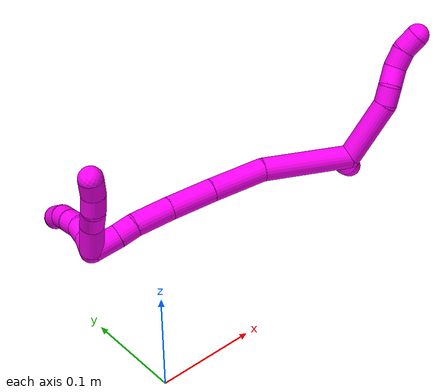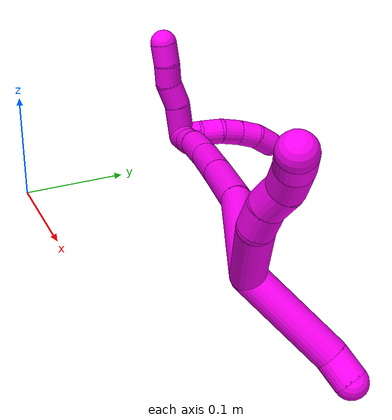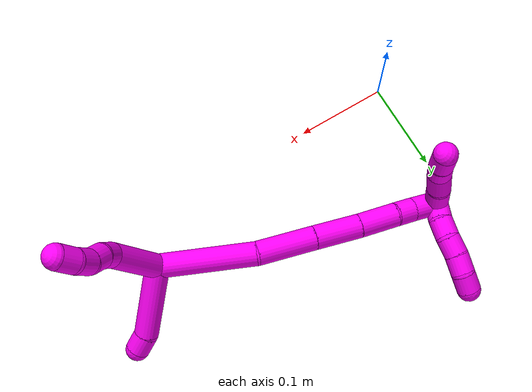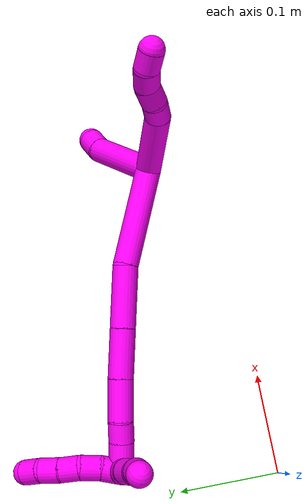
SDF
<sdf version="1.7">
 <world name="default">
  <model name="10">
   <static>0</static>
   <link name="10">
    <collision name="collision-cylinder-e_1_2_8">
     <pose>-0.000286 0.002305 0.034455 -0.066793 -0.008289 0.000277</pose>
     <geometry><cylinder><radius>0.0125</radius><length>0.069066</length></cylinder></geometry>
     <surface>
      <friction><ode><mu>1.16</mu><mu2>1.16</mu2><slip1>0</slip1><slip2>0</slip2></ode></friction>
      <contact><ode><kp>1e+06</kp><kd>1</kd><max_vel>0</max_vel><min_depth>0.001</min_depth></ode></contact>
     </surface>
    </collision>
    <visual name="visual-cylinder-e_1_2_8">
     <pose>-0.000286 0.002305 0.034455 -0.066793 -0.008289 0.000277</pose>
     <geometry><cylinder><radius>0.0125</radius><length>0.069066</length></cylinder></geometry>
     <material><ambient>1 0 0.964706 1</ambient></material>
    </visual>
    <collision name="collision-cylinder-e_2_8_9">
     <pose>-0.001416 0.008479 0.078166 -0.395961 -0.08389 0.016839</pose>
     <geometry><cylinder><radius>0.0125</radius><length>0.020135</length></cylinder></geometry>
     <surface>
      <friction><ode><mu>1.16</mu><mu2>1.16</mu2><slip1>0</slip1><slip2>0</slip2></ode></friction>
      <contact><ode><kp>1e+06</kp><kd>1</kd><max_vel>0</max_vel><min_depth>0.001</min_depth></ode></contact>
     </surface>
    </collision>
    <visual name="visual-cylinder-e_2_8_9">
     <pose>-0.001416 0.008479 0.078166 -0.395961 -0.08389 0.016839</pose>
     <geometry><cylinder><radius>0.0125</radius><length>0.020135</length></cylinder></geometry>
     <material><ambient>1 0 0.964706 1</ambient></material>
    </visual>
    <collision name="collision-cylinder-e_3_9_10">
     <pose>-0.000738 0.017298 0.096071 -0.519743 0.151557 -0.040368</pose>
     <geometry><cylinder><radius>0.0125</radius><length>0.020162</length></cylinder></geometry>
     <surface>
      <friction><ode><mu>1.16</mu><mu2>1.16</mu2><slip1>0</slip1><slip2>0</slip2></ode></friction>
      <contact><ode><kp>1e+06</kp><kd>1</kd><max_vel>0</max_vel><min_depth>0.001</min_depth></ode></contact>
     </surface>
    </collision>
    <visual name="visual-cylinder-e_3_9_10">
     <pose>-0.000738 0.017298 0.096071 -0.519743 0.151557 -0.040368</pose>
     <geometry><cylinder><radius>0.0125</radius><length>0.020162</length></cylinder></geometry>
     <material><ambient>1 0 0.964706 1</ambient></material>
    </visual>
    <collision name="collision-cylinder-e_4_10_11">
     <pose>0.000705 0.024477 0.11472 -0.219396 -0.007721 0.00085</pose>
     <geometry><cylinder><radius>0.0125</radius><length>0.02049</length></cylinder></geometry>
     <surface>
      <friction><ode><mu>1.16</mu><mu2>1.16</mu2><slip1>0</slip1><slip2>0</slip2></ode></friction>
      <contact><ode><kp>1e+06</kp><kd>1</kd><max_vel>0</max_vel><min_depth>0.001</min_depth></ode></contact>
     </surface>
    </collision>
    <visual name="visual-cylinder-e_4_10_11">
     <pose>0.000705 0.024477 0.11472 -0.219396 -0.007721 0.00085</pose>
     <geometry><cylinder><radius>0.0125</radius><length>0.02049</length></cylinder></geometry>
     <material><ambient>1 0 0.964706 1</ambient></material>
    </visual>
    <collision name="collision-cylinder-e_5_11_6">
     <pose>0.001651 0.026014 0.134716 0.069164 0.101879 0.003528</pose>
     <geometry><cylinder><radius>0.0125</radius><length>0.020147</length></cylinder></geometry>
     <surface>
      <friction><ode><mu>1.16</mu><mu2>1.16</mu2><slip1>0</slip1><slip2>0</slip2></ode></friction>
      <contact><ode><kp>1e+06</kp><kd>1</kd><max_vel>0</max_vel><min_depth>0.001</min_depth></ode></contact>
     </surface>
    </collision>
    <visual name="visual-cylinder-e_5_11_6">
     <pose>0.001651 0.026014 0.134716 0.069164 0.101879 0.003528</pose>
     <geometry><cylinder><radius>0.0125</radius><length>0.020147</length></cylinder></geometry>
     <material><ambient>1 0 0.964706 1</ambient></material>
    </visual>
    <collision name="collision-cylinder-e_1_2_12">
     <pose>0.033444 0.012926 -0.016158 -2.46687 1.01675 -2.01794</pose>
     <geometry><cylinder><radius>0.0125</radius><length>0.078655</length></cylinder></geometry>
     <surface>
      <friction><ode><mu>1.16</mu><mu2>1.16</mu2><slip1>0</slip1><slip2>0</slip2></ode></friction>
      <contact><ode><kp>1e+06</kp><kd>1</kd><max_vel>0</max_vel><min_depth>0.001</min_depth></ode></contact>
     </surface>
    </collision>
    <visual name="visual-cylinder-e_1_2_12">
     <pose>0.033444 0.012926 -0.016158 -2.46687 1.01675 -2.01794</pose>
     <geometry><cylinder><radius>0.0125</radius><length>0.078655</length></cylinder></geometry>
     <material><ambient>1 0 0.964706 1</ambient></material>
    </visual>
    <collision name="collision-cylinder-e_2_12_5">
     <pose>0.077203 0.027097 -0.034755 -2.66941 1.31119 -2.53525</pose>
     <geometry><cylinder><radius>0.0125</radius><length>0.021345</length></cylinder></geometry>
     <surface>
      <friction><ode><mu>1.16</mu><mu2>1.16</mu2><slip1>0</slip1><slip2>0</slip2></ode></friction>
      <contact><ode><kp>1e+06</kp><kd>1</kd><max_vel>0</max_vel><min_depth>0.001</min_depth></ode></contact>
     </surface>
    </collision>
    <visual name="visual-cylinder-e_2_12_5">
     <pose>0.077203 0.027097 -0.034755 -2.66941 1.31119 -2.53525</pose>
     <geometry><cylinder><radius>0.0125</radius><length>0.021345</length></cylinder></geometry>
     <material><ambient>1 0 0.964706 1</ambient></material>
    </visual>
    <collision name="collision-cylinder-e_1_2_13">
     <pose>-0.037982 0.018758 -0.026556 -2.52661 -0.862822 1.93382</pose>
     <geometry><cylinder><radius>0.0125</radius><length>0.099994</length></cylinder></geometry>
     <surface>
      <friction><ode><mu>1.16</mu><mu2>1.16</mu2><slip1>0</slip1><slip2>0</slip2></ode></friction>
      <contact><ode><kp>1e+06</kp><kd>1</kd><max_vel>0</max_vel><min_depth>0.001</min_depth></ode></contact>
     </surface>
    </collision>
    <visual name="visual-cylinder-e_1_2_13">
     <pose>-0.037982 0.018758 -0.026556 -2.52661 -0.862822 1.93382</pose>
     <geometry><cylinder><radius>0.0125</radius><length>0.099994</length></cylinder></geometry>
     <material><ambient>1 0 0.964706 1</ambient></material>
    </visual>
    <collision name="collision-cylinder-e_2_13_14">
     <pose>-0.099145 0.042517 -0.071996 -2.8827 -0.870553 2.5957</pose>
     <geometry><cylinder><radius>0.0125</radius><length>0.060631</length></cylinder></geometry>
     <surface>
      <friction><ode><mu>1.16</mu><mu2>1.16</mu2><slip1>0</slip1><slip2>0</slip2></ode></friction>
      <contact><ode><kp>1e+06</kp><kd>1</kd><max_vel>0</max_vel><min_depth>0.001</min_depth></ode></contact>
     </surface>
    </collision>
    <visual name="visual-cylinder-e_2_13_14">
     <pose>-0.099145 0.042517 -0.071996 -2.8827 -0.870553 2.5957</pose>
     <geometry><cylinder><radius>0.0125</radius><length>0.060631</length></cylinder></geometry>
     <material><ambient>1 0 0.964706 1</ambient></material>
    </visual>
    <collision name="collision-cylinder-e_3_14_15">
     <pose>-0.140508 0.051298 -0.106534 -2.90467 -0.845924 2.62461</pose>
     <geometry><cylinder><radius>0.0125</radius><length>0.048573</length></cylinder></geometry>
     <surface>
      <friction><ode><mu>1.16</mu><mu2>1.16</mu2><slip1>0</slip1><slip2>0</slip2></ode></friction>
      <contact><ode><kp>1e+06</kp><kd>1</kd><max_vel>0</max_vel><min_depth>0.001</min_depth></ode></contact>
     </surface>
    </collision>
    <visual name="visual-cylinder-e_3_14_15">
     <pose>-0.140508 0.051298 -0.106534 -2.90467 -0.845924 2.62461</pose>
     <geometry><cylinder><radius>0.0125</radius><length>0.048573</length></cylinder></geometry>
     <material><ambient>1 0 0.964706 1</ambient></material>
    </visual>
    <collision name="collision-cylinder-e_4_15_16">
     <pose>-0.174293 0.057416 -0.135443 -2.96698 -0.859044 2.76397</pose>
     <geometry><cylinder><radius>0.0125</radius><length>0.041215</length></cylinder></geometry>
     <surface>
      <friction><ode><mu>1.16</mu><mu2>1.16</mu2><slip1>0</slip1><slip2>0</slip2></ode></friction>
      <contact><ode><kp>1e+06</kp><kd>1</kd><max_vel>0</max_vel><min_depth>0.001</min_depth></ode></contact>
     </surface>
    </collision>
    <visual name="visual-cylinder-e_4_15_16">
     <pose>-0.174293 0.057416 -0.135443 -2.96698 -0.859044 2.76397</pose>
     <geometry><cylinder><radius>0.0125</radius><length>0.041215</length></cylinder></geometry>
     <material><ambient>1 0 0.964706 1</ambient></material>
    </visual>
    <collision name="collision-cylinder-e_5_16_17">
     <pose>-0.196629 0.060036 -0.156202 -3.10405 -0.730841 3.04353</pose>
     <geometry><cylinder><radius>0.0125</radius><length>0.02017</length></cylinder></geometry>
     <surface>
      <friction><ode><mu>1.16</mu><mu2>1.16</mu2><slip1>0</slip1><slip2>0</slip2></ode></friction>
      <contact><ode><kp>1e+06</kp><kd>1</kd><max_vel>0</max_vel><min_depth>0.001</min_depth></ode></contact>
     </surface>
    </collision>
    <visual name="visual-cylinder-e_5_16_17">
     <pose>-0.196629 0.060036 -0.156202 -3.10405 -0.730841 3.04353</pose>
     <geometry><cylinder><radius>0.0125</radius><length>0.02017</length></cylinder></geometry>
     <material><ambient>1 0 0.964706 1</ambient></material>
    </visual>
    <collision name="collision-cylinder-e_6_17_1">
     <pose>-0.213553 0.061604 -0.174232 -3.02003 -0.765585 2.84159</pose>
     <geometry><cylinder><radius>0.0125</radius><length>0.029416</length></cylinder></geometry>
     <surface>
      <friction><ode><mu>1.16</mu><mu2>1.16</mu2><slip1>0</slip1><slip2>0</slip2></ode></friction>
      <contact><ode><kp>1e+06</kp><kd>1</kd><max_vel>0</max_vel><min_depth>0.001</min_depth></ode></contact>
     </surface>
    </collision>
    <visual name="visual-cylinder-e_6_17_1">
     <pose>-0.213553 0.061604 -0.174232 -3.02003 -0.765585 2.84159</pose>
     <geometry><cylinder><radius>0.0125</radius><length>0.029416</length></cylinder></geometry>
     <material><ambient>1 0 0.964706 1</ambient></material>
    </visual>
    <collision name="collision-cylinder-e_1_1_18">
     <pose>-0.232409 0.066045 -0.169485 -0.203736 -0.507067 0.052961</pose>
     <geometry><cylinder><radius>0.0125</radius><length>0.03568</length></cylinder></geometry>
     <surface>
      <friction><ode><mu>1.16</mu><mu2>1.16</mu2><slip1>0</slip1><slip2>0</slip2></ode></friction>
      <contact><ode><kp>1e+06</kp><kd>1</kd><max_vel>0</max_vel><min_depth>0.001</min_depth></ode></contact>
     </surface>
    </collision>
    <visual name="visual-cylinder-e_1_1_18">
     <pose>-0.232409 0.066045 -0.169485 -0.203736 -0.507067 0.052961</pose>
     <geometry><cylinder><radius>0.0125</radius><length>0.03568</length></cylinder></geometry>
     <material><ambient>1 0 0.964706 1</ambient></material>
    </visual>
    <collision name="collision-cylinder-e_2_18_19">
     <pose>-0.247771 0.068697 -0.144432 0.051493 -0.599914 -0.015929</pose>
     <geometry><cylinder><radius>0.0125</radius><length>0.023731</length></cylinder></geometry>
     <surface>
      <friction><ode><mu>1.16</mu><mu2>1.16</mu2><slip1>0</slip1><slip2>0</slip2></ode></friction>
      <contact><ode><kp>1e+06</kp><kd>1</kd><max_vel>0</max_vel><min_depth>0.001</min_depth></ode></contact>
     </surface>
    </collision>
    <visual name="visual-cylinder-e_2_18_19">
     <pose>-0.247771 0.068697 -0.144432 0.051493 -0.599914 -0.015929</pose>
     <geometry><cylinder><radius>0.0125</radius><length>0.023731</length></cylinder></geometry>
     <material><ambient>1 0 0.964706 1</ambient></material>
    </visual>
    <collision name="collision-cylinder-e_3_19_20">
     <pose>-0.259066 0.070493 -0.125893 -0.256851 -0.46971 0.061777</pose>
     <geometry><cylinder><radius>0.0125</radius><length>0.02031</length></cylinder></geometry>
     <surface>
      <friction><ode><mu>1.16</mu><mu2>1.16</mu2><slip1>0</slip1><slip2>0</slip2></ode></friction>
      <contact><ode><kp>1e+06</kp><kd>1</kd><max_vel>0</max_vel><min_depth>0.001</min_depth></ode></contact>
     </surface>
    </collision>
    <visual name="visual-cylinder-e_3_19_20">
     <pose>-0.259066 0.070493 -0.125893 -0.256851 -0.46971 0.061777</pose>
     <geometry><cylinder><radius>0.0125</radius><length>0.02031</length></cylinder></geometry>
     <material><ambient>1 0 0.964706 1</ambient></material>
    </visual>
    <collision name="collision-cylinder-e_4_20_4">
     <pose>-0.269679 0.074819 -0.109229 -0.250802 -0.635194 0.082832</pose>
     <geometry><cylinder><radius>0.0125</radius><length>0.020279</length></cylinder></geometry>
     <surface>
      <friction><ode><mu>1.16</mu><mu2>1.16</mu2><slip1>0</slip1><slip2>0</slip2></ode></friction>
      <contact><ode><kp>1e+06</kp><kd>1</kd><max_vel>0</max_vel><min_depth>0.001</min_depth></ode></contact>
     </surface>
    </collision>
    <visual name="visual-cylinder-e_4_20_4">
     <pose>-0.269679 0.074819 -0.109229 -0.250802 -0.635194 0.082832</pose>
     <geometry><cylinder><radius>0.0125</radius><length>0.020279</length></cylinder></geometry>
     <material><ambient>1 0 0.964706 1</ambient></material>
    </visual>
    <collision name="collision-cylinder-e_1_1_21">
     <pose>-0.220038 0.072173 -0.184492 -1.54215 0.379807 -0.369325</pose>
     <geometry><cylinder><radius>0.0125</radius><length>0.02</length></cylinder></geometry>
     <surface>
      <friction><ode><mu>1.16</mu><mu2>1.16</mu2><slip1>0</slip1><slip2>0</slip2></ode></friction>
      <contact><ode><kp>1e+06</kp><kd>1</kd><max_vel>0</max_vel><min_depth>0.001</min_depth></ode></contact>
     </surface>
    </collision>
    <visual name="visual-cylinder-e_1_1_21">
     <pose>-0.220038 0.072173 -0.184492 -1.54215 0.379807 -0.369325</pose>
     <geometry><cylinder><radius>0.0125</radius><length>0.02</length></cylinder></geometry>
     <material><ambient>1 0 0.964706 1</ambient></material>
    </visual>
    <collision name="collision-cylinder-e_2_21_22">
     <pose>-0.213265 0.090847 -0.185783 -1.73506 0.311579 -0.366327</pose>
     <geometry><cylinder><radius>0.0125</radius><length>0.02</length></cylinder></geometry>
     <surface>
      <friction><ode><mu>1.16</mu><mu2>1.16</mu2><slip1>0</slip1><slip2>0</slip2></ode></friction>
      <contact><ode><kp>1e+06</kp><kd>1</kd><max_vel>0</max_vel><min_depth>0.001</min_depth></ode></contact>
     </surface>
    </collision>
    <visual name="visual-cylinder-e_2_21_22">
     <pose>-0.213265 0.090847 -0.185783 -1.73506 0.311579 -0.366327</pose>
     <geometry><cylinder><radius>0.0125</radius><length>0.02</length></cylinder></geometry>
     <material><ambient>1 0 0.964706 1</ambient></material>
    </visual>
    <collision name="collision-cylinder-e_3_22_23">
     <pose>-0.207262 0.108804 -0.191582 -2.03069 0.298082 -0.474755</pose>
     <geometry><cylinder><radius>0.0125</radius><length>0.02</length></cylinder></geometry>
     <surface>
      <friction><ode><mu>1.16</mu><mu2>1.16</mu2><slip1>0</slip1><slip2>0</slip2></ode></friction>
      <contact><ode><kp>1e+06</kp><kd>1</kd><max_vel>0</max_vel><min_depth>0.001</min_depth></ode></contact>
     </surface>
    </collision>
    <visual name="visual-cylinder-e_3_22_23">
     <pose>-0.207262 0.108804 -0.191582 -2.03069 0.298082 -0.474755</pose>
     <geometry><cylinder><radius>0.0125</radius><length>0.02</length></cylinder></geometry>
     <material><ambient>1 0 0.964706 1</ambient></material>
    </visual>
    <collision name="collision-cylinder-e_4_23_24">
     <pose>-0.200222 0.12538 -0.200183 -2.06903 0.422795 -0.692974</pose>
     <geometry><cylinder><radius>0.0125</radius><length>0.02</length></cylinder></geometry>
     <surface>
      <friction><ode><mu>1.16</mu><mu2>1.16</mu2><slip1>0</slip1><slip2>0</slip2></ode></friction>
      <contact><ode><kp>1e+06</kp><kd>1</kd><max_vel>0</max_vel><min_depth>0.001</min_depth></ode></contact>
     </surface>
    </collision>
    <visual name="visual-cylinder-e_4_23_24">
     <pose>-0.200222 0.12538 -0.200183 -2.06903 0.422795 -0.692974</pose>
     <geometry><cylinder><radius>0.0125</radius><length>0.02</length></cylinder></geometry>
     <material><ambient>1 0 0.964706 1</ambient></material>
    </visual>
    <collision name="collision-cylinder-e_5_24_3">
     <pose>-0.191817 0.139466 -0.211219 -2.40344 0.444744 -1.05799</pose>
     <geometry><cylinder><radius>0.0125</radius><length>0.02</length></cylinder></geometry>
     <surface>
      <friction><ode><mu>1.16</mu><mu2>1.16</mu2><slip1>0</slip1><slip2>0</slip2></ode></friction>
      <contact><ode><kp>1e+06</kp><kd>1</kd><max_vel>0</max_vel><min_depth>0.001</min_depth></ode></contact>
     </surface>
    </collision>
    <visual name="visual-cylinder-e_5_24_3">
     <pose>-0.191817 0.139466 -0.211219 -2.40344 0.444744 -1.05799</pose>
     <geometry><cylinder><radius>0.0125</radius><length>0.02</length></cylinder></geometry>
     <material><ambient>1 0 0.964706 1</ambient></material>
    </visual>
    <collision name="collision-sphere-3">
     <pose>-0.187515 0.14554 -0.217896 0 -0 0</pose>
     <geometry><sphere><radius>0.0125</radius></sphere></geometry>
     <surface>
      <friction><ode><mu>1.16</mu><mu2>1.16</mu2><slip1>0</slip1><slip2>0</slip2></ode></friction>
      <contact><ode><kp>1e+06</kp><kd>1</kd><max_vel>0</max_vel><min_depth>0.001</min_depth></ode></contact>
     </surface>
    </collision>
    <visual name="visual-sphere-3">
     <pose>-0.187515 0.14554 -0.217896 0 -0 0</pose>
     <geometry><sphere><radius>0.0125</radius></sphere></geometry>
     <material><ambient>1 0 0.964706 1</ambient></material>
    </visual>
    <collision name="collision-sphere-24">
     <pose>-0.196119 0.133391 -0.204541 0 -0 0</pose>
     <geometry><sphere><radius>0.0125</radius></sphere></geometry>
     <surface>
      <friction><ode><mu>1.16</mu><mu2>1.16</mu2><slip1>0</slip1><slip2>0</slip2></ode></friction>
      <contact><ode><kp>1e+06</kp><kd>1</kd><max_vel>0</max_vel><min_depth>0.001</min_depth></ode></contact>
     </surface>
    </collision>
    <visual name="visual-sphere-24">
     <pose>-0.196119 0.133391 -0.204541 0 -0 0</pose>
     <geometry><sphere><radius>0.0125</radius></sphere></geometry>
     <material><ambient>1 0 0.964706 1</ambient></material>
    </visual>
    <collision name="collision-sphere-23">
     <pose>-0.204325 0.117369 -0.195825 0 -0 0</pose>
     <geometry><sphere><radius>0.0125</radius></sphere></geometry>
     <surface>
      <friction><ode><mu>1.16</mu><mu2>1.16</mu2><slip1>0</slip1><slip2>0</slip2></ode></friction>
      <contact><ode><kp>1e+06</kp><kd>1</kd><max_vel>0</max_vel><min_depth>0.001</min_depth></ode></contact>
     </surface>
    </collision>
    <visual name="visual-sphere-23">
     <pose>-0.204325 0.117369 -0.195825 0 -0 0</pose>
     <geometry><sphere><radius>0.0125</radius></sphere></geometry>
     <material><ambient>1 0 0.964706 1</ambient></material>
    </visual>
    <collision name="collision-sphere-22">
     <pose>-0.210199 0.100238 -0.187339 0 -0 0</pose>
     <geometry><sphere><radius>0.0125</radius></sphere></geometry>
     <surface>
      <friction><ode><mu>1.16</mu><mu2>1.16</mu2><slip1>0</slip1><slip2>0</slip2></ode></friction>
      <contact><ode><kp>1e+06</kp><kd>1</kd><max_vel>0</max_vel><min_depth>0.001</min_depth></ode></contact>
     </surface>
    </collision>
    <visual name="visual-sphere-22">
     <pose>-0.210199 0.100238 -0.187339 0 -0 0</pose>
     <geometry><sphere><radius>0.0125</radius></sphere></geometry>
     <material><ambient>1 0 0.964706 1</ambient></material>
    </visual>
    <collision name="collision-sphere-21">
     <pose>-0.21633 0.081457 -0.184226 0 -0 0</pose>
     <geometry><sphere><radius>0.0125</radius></sphere></geometry>
     <surface>
      <friction><ode><mu>1.16</mu><mu2>1.16</mu2><slip1>0</slip1><slip2>0</slip2></ode></friction>
      <contact><ode><kp>1e+06</kp><kd>1</kd><max_vel>0</max_vel><min_depth>0.001</min_depth></ode></contact>
     </surface>
    </collision>
    <visual name="visual-sphere-21">
     <pose>-0.21633 0.081457 -0.184226 0 -0 0</pose>
     <geometry><sphere><radius>0.0125</radius></sphere></geometry>
     <material><ambient>1 0 0.964706 1</ambient></material>
    </visual>
    <collision name="collision-sphere-4">
     <pose>-0.275695 0.076844 -0.101322 0 -0 0</pose>
     <geometry><sphere><radius>0.0125</radius></sphere></geometry>
     <surface>
      <friction><ode><mu>1.16</mu><mu2>1.16</mu2><slip1>0</slip1><slip2>0</slip2></ode></friction>
      <contact><ode><kp>1e+06</kp><kd>1</kd><max_vel>0</max_vel><min_depth>0.001</min_depth></ode></contact>
     </surface>
    </collision>
    <visual name="visual-sphere-4">
     <pose>-0.275695 0.076844 -0.101322 0 -0 0</pose>
     <geometry><sphere><radius>0.0125</radius></sphere></geometry>
     <material><ambient>1 0 0.964706 1</ambient></material>
    </visual>
    <collision name="collision-sphere-20">
     <pose>-0.263663 0.072793 -0.117135 0 -0 0</pose>
     <geometry><sphere><radius>0.0125</radius></sphere></geometry>
     <surface>
      <friction><ode><mu>1.16</mu><mu2>1.16</mu2><slip1>0</slip1><slip2>0</slip2></ode></friction>
      <contact><ode><kp>1e+06</kp><kd>1</kd><max_vel>0</max_vel><min_depth>0.001</min_depth></ode></contact>
     </surface>
    </collision>
    <visual name="visual-sphere-20">
     <pose>-0.263663 0.072793 -0.117135 0 -0 0</pose>
     <geometry><sphere><radius>0.0125</radius></sphere></geometry>
     <material><ambient>1 0 0.964706 1</ambient></material>
    </visual>
    <collision name="collision-sphere-6">
     <pose>0.002675 0.025321 0.144713 0 -0 0</pose>
     <geometry><sphere><radius>0.0125</radius></sphere></geometry>
     <surface>
      <friction><ode><mu>1.16</mu><mu2>1.16</mu2><slip1>0</slip1><slip2>0</slip2></ode></friction>
      <contact><ode><kp>1e+06</kp><kd>1</kd><max_vel>0</max_vel><min_depth>0.001</min_depth></ode></contact>
     </surface>
    </collision>
    <visual name="visual-sphere-6">
     <pose>0.002675 0.025321 0.144713 0 -0 0</pose>
     <geometry><sphere><radius>0.0125</radius></sphere></geometry>
     <material><ambient>1 0 0.964706 1</ambient></material>
    </visual>
    <collision name="collision-sphere-11">
     <pose>0.000626 0.026706 0.124719 0 -0 0</pose>
     <geometry><sphere><radius>0.0125</radius></sphere></geometry>
     <surface>
      <friction><ode><mu>1.16</mu><mu2>1.16</mu2><slip1>0</slip1><slip2>0</slip2></ode></friction>
      <contact><ode><kp>1e+06</kp><kd>1</kd><max_vel>0</max_vel><min_depth>0.001</min_depth></ode></contact>
     </surface>
    </collision>
    <visual name="visual-sphere-11">
     <pose>0.000626 0.026706 0.124719 0 -0 0</pose>
     <geometry><sphere><radius>0.0125</radius></sphere></geometry>
     <material><ambient>1 0 0.964706 1</ambient></material>
    </visual>
    <collision name="collision-sphere-10">
     <pose>0.000784 0.022247 0.104721 0 -0 0</pose>
     <geometry><sphere><radius>0.0125</radius></sphere></geometry>
     <surface>
      <friction><ode><mu>1.16</mu><mu2>1.16</mu2><slip1>0</slip1><slip2>0</slip2></ode></friction>
      <contact><ode><kp>1e+06</kp><kd>1</kd><max_vel>0</max_vel><min_depth>0.001</min_depth></ode></contact>
     </surface>
    </collision>
    <visual name="visual-sphere-10">
     <pose>0.000784 0.022247 0.104721 0 -0 0</pose>
     <geometry><sphere><radius>0.0125</radius></sphere></geometry>
     <material><ambient>1 0 0.964706 1</ambient></material>
    </visual>
    <collision name="collision-sphere-9">
     <pose>-0.00226 0.012348 0.087421 0 -0 0</pose>
     <geometry><sphere><radius>0.0125</radius></sphere></geometry>
     <surface>
      <friction><ode><mu>1.16</mu><mu2>1.16</mu2><slip1>0</slip1><slip2>0</slip2></ode></friction>
      <contact><ode><kp>1e+06</kp><kd>1</kd><max_vel>0</max_vel><min_depth>0.001</min_depth></ode></contact>
     </surface>
    </collision>
    <visual name="visual-sphere-9">
     <pose>-0.00226 0.012348 0.087421 0 -0 0</pose>
     <geometry><sphere><radius>0.0125</radius></sphere></geometry>
     <material><ambient>1 0 0.964706 1</ambient></material>
    </visual>
    <collision name="collision-sphere-2">
     <geometry><sphere><radius>0.0125</radius></sphere></geometry>
     <surface>
      <friction><ode><mu>1.16</mu><mu2>1.16</mu2><slip1>0</slip1><slip2>0</slip2></ode></friction>
      <contact><ode><kp>1e+06</kp><kd>1</kd><max_vel>0</max_vel><min_depth>0.001</min_depth></ode></contact>
     </surface>
    </collision>
    <visual name="visual-sphere-2">
     <geometry><sphere><radius>0.0125</radius></sphere></geometry>
     <material><ambient>1 0 0.964706 1</ambient></material>
    </visual>
    <collision name="collision-sphere-19">
     <pose>-0.25447 0.068193 -0.134651 0 -0 0</pose>
     <geometry><sphere><radius>0.0125</radius></sphere></geometry>
     <surface>
      <friction><ode><mu>1.16</mu><mu2>1.16</mu2><slip1>0</slip1><slip2>0</slip2></ode></friction>
      <contact><ode><kp>1e+06</kp><kd>1</kd><max_vel>0</max_vel><min_depth>0.001</min_depth></ode></contact>
     </surface>
    </collision>
    <visual name="visual-sphere-19">
     <pose>-0.25447 0.068193 -0.134651 0 -0 0</pose>
     <geometry><sphere><radius>0.0125</radius></sphere></geometry>
     <material><ambient>1 0 0.964706 1</ambient></material>
    </visual>
    <collision name="collision-sphere-8">
     <pose>-0.000572 0.00461 0.06891 0 -0 0</pose>
     <geometry><sphere><radius>0.0125</radius></sphere></geometry>
     <surface>
      <friction><ode><mu>1.16</mu><mu2>1.16</mu2><slip1>0</slip1><slip2>0</slip2></ode></friction>
      <contact><ode><kp>1e+06</kp><kd>1</kd><max_vel>0</max_vel><min_depth>0.001</min_depth></ode></contact>
     </surface>
    </collision>
    <visual name="visual-sphere-8">
     <pose>-0.000572 0.00461 0.06891 0 -0 0</pose>
     <geometry><sphere><radius>0.0125</radius></sphere></geometry>
     <material><ambient>1 0 0.964706 1</ambient></material>
    </visual>
    <collision name="collision-sphere-12">
     <pose>0.066889 0.025851 -0.032315 0 -0 0</pose>
     <geometry><sphere><radius>0.0125</radius></sphere></geometry>
     <surface>
      <friction><ode><mu>1.16</mu><mu2>1.16</mu2><slip1>0</slip1><slip2>0</slip2></ode></friction>
      <contact><ode><kp>1e+06</kp><kd>1</kd><max_vel>0</max_vel><min_depth>0.001</min_depth></ode></contact>
     </surface>
    </collision>
    <visual name="visual-sphere-12">
     <pose>0.066889 0.025851 -0.032315 0 -0 0</pose>
     <geometry><sphere><radius>0.0125</radius></sphere></geometry>
     <material><ambient>1 0 0.964706 1</ambient></material>
    </visual>
    <collision name="collision-sphere-5">
     <pose>0.087518 0.028344 -0.037195 0 -0 0</pose>
     <geometry><sphere><radius>0.0125</radius></sphere></geometry>
     <surface>
      <friction><ode><mu>1.16</mu><mu2>1.16</mu2><slip1>0</slip1><slip2>0</slip2></ode></friction>
      <contact><ode><kp>1e+06</kp><kd>1</kd><max_vel>0</max_vel><min_depth>0.001</min_depth></ode></contact>
     </surface>
    </collision>
    <visual name="visual-sphere-5">
     <pose>0.087518 0.028344 -0.037195 0 -0 0</pose>
     <geometry><sphere><radius>0.0125</radius></sphere></geometry>
     <material><ambient>1 0 0.964706 1</ambient></material>
    </visual>
    <collision name="collision-sphere-13">
     <pose>-0.075963 0.037516 -0.053112 0 -0 0</pose>
     <geometry><sphere><radius>0.0125</radius></sphere></geometry>
     <surface>
      <friction><ode><mu>1.16</mu><mu2>1.16</mu2><slip1>0</slip1><slip2>0</slip2></ode></friction>
      <contact><ode><kp>1e+06</kp><kd>1</kd><max_vel>0</max_vel><min_depth>0.001</min_depth></ode></contact>
     </surface>
    </collision>
    <visual name="visual-sphere-13">
     <pose>-0.075963 0.037516 -0.053112 0 -0 0</pose>
     <geometry><sphere><radius>0.0125</radius></sphere></geometry>
     <material><ambient>1 0 0.964706 1</ambient></material>
    </visual>
    <collision name="collision-sphere-14">
     <pose>-0.122327 0.047519 -0.090881 0 -0 0</pose>
     <geometry><sphere><radius>0.0125</radius></sphere></geometry>
     <surface>
      <friction><ode><mu>1.16</mu><mu2>1.16</mu2><slip1>0</slip1><slip2>0</slip2></ode></friction>
      <contact><ode><kp>1e+06</kp><kd>1</kd><max_vel>0</max_vel><min_depth>0.001</min_depth></ode></contact>
     </surface>
    </collision>
    <visual name="visual-sphere-14">
     <pose>-0.122327 0.047519 -0.090881 0 -0 0</pose>
     <geometry><sphere><radius>0.0125</radius></sphere></geometry>
     <material><ambient>1 0 0.964706 1</ambient></material>
    </visual>
    <collision name="collision-sphere-15">
     <pose>-0.158689 0.055078 -0.122187 0 -0 0</pose>
     <geometry><sphere><radius>0.0125</radius></sphere></geometry>
     <surface>
      <friction><ode><mu>1.16</mu><mu2>1.16</mu2><slip1>0</slip1><slip2>0</slip2></ode></friction>
      <contact><ode><kp>1e+06</kp><kd>1</kd><max_vel>0</max_vel><min_depth>0.001</min_depth></ode></contact>
     </surface>
    </collision>
    <visual name="visual-sphere-15">
     <pose>-0.158689 0.055078 -0.122187 0 -0 0</pose>
     <geometry><sphere><radius>0.0125</radius></sphere></geometry>
     <material><ambient>1 0 0.964706 1</ambient></material>
    </visual>
    <collision name="collision-sphere-16">
     <pose>-0.189898 0.059754 -0.148698 0 -0 0</pose>
     <geometry><sphere><radius>0.0125</radius></sphere></geometry>
     <surface>
      <friction><ode><mu>1.16</mu><mu2>1.16</mu2><slip1>0</slip1><slip2>0</slip2></ode></friction>
      <contact><ode><kp>1e+06</kp><kd>1</kd><max_vel>0</max_vel><min_depth>0.001</min_depth></ode></contact>
     </surface>
    </collision>
    <visual name="visual-sphere-16">
     <pose>-0.189898 0.059754 -0.148698 0 -0 0</pose>
     <geometry><sphere><radius>0.0125</radius></sphere></geometry>
     <material><ambient>1 0 0.964706 1</ambient></material>
    </visual>
    <collision name="collision-sphere-17">
     <pose>-0.203361 0.060318 -0.163706 0 -0 0</pose>
     <geometry><sphere><radius>0.0125</radius></sphere></geometry>
     <surface>
      <friction><ode><mu>1.16</mu><mu2>1.16</mu2><slip1>0</slip1><slip2>0</slip2></ode></friction>
      <contact><ode><kp>1e+06</kp><kd>1</kd><max_vel>0</max_vel><min_depth>0.001</min_depth></ode></contact>
     </surface>
    </collision>
    <visual name="visual-sphere-17">
     <pose>-0.203361 0.060318 -0.163706 0 -0 0</pose>
     <geometry><sphere><radius>0.0125</radius></sphere></geometry>
     <material><ambient>1 0 0.964706 1</ambient></material>
    </visual>
    <collision name="collision-sphere-1">
     <pose>-0.223745 0.06289 -0.184758 0 -0 0</pose>
     <geometry><sphere><radius>0.0125</radius></sphere></geometry>
     <surface>
      <friction><ode><mu>1.16</mu><mu2>1.16</mu2><slip1>0</slip1><slip2>0</slip2></ode></friction>
      <contact><ode><kp>1e+06</kp><kd>1</kd><max_vel>0</max_vel><min_depth>0.001</min_depth></ode></contact>
     </surface>
    </collision>
    <visual name="visual-sphere-1">
     <pose>-0.223745 0.06289 -0.184758 0 -0 0</pose>
     <geometry><sphere><radius>0.0125</radius></sphere></geometry>
     <material><ambient>1 0 0.964706 1</ambient></material>
    </visual>
    <collision name="collision-sphere-18">
     <pose>-0.241072 0.069201 -0.154213 0 -0 0</pose>
     <geometry><sphere><radius>0.0125</radius></sphere></geometry>
     <surface>
      <friction><ode><mu>1.16</mu><mu2>1.16</mu2><slip1>0</slip1><slip2>0</slip2></ode></friction>
      <contact><ode><kp>1e+06</kp><kd>1</kd><max_vel>0</max_vel><min_depth>0.001</min_depth></ode></contact>
     </surface>
    </collision>
    <visual name="visual-sphere-18">
     <pose>-0.241072 0.069201 -0.154213 0 -0 0</pose>
     <geometry><sphere><radius>0.0125</radius></sphere></geometry>
     <material><ambient>1 0 0.964706 1</ambient></material>
    </visual>
    <inertial>
     <pose>-0.100476 0.044404 -0.067764 0 -0 0</pose>
     <mass>0.75</mass>
     <inertia><ixx>2.4e-05</ixx><ixy>0</ixy><ixz>0</ixz><iyy>0.000244</iyy><iyz>0</iyz><izz>-3e-06</izz></inertia>
    </inertial>
   </link>
   <pose>0.315448 0.072076 0.075651 0.364512 0.484245 0.155162</pose>
  </model>
 </world>
</sdf>
